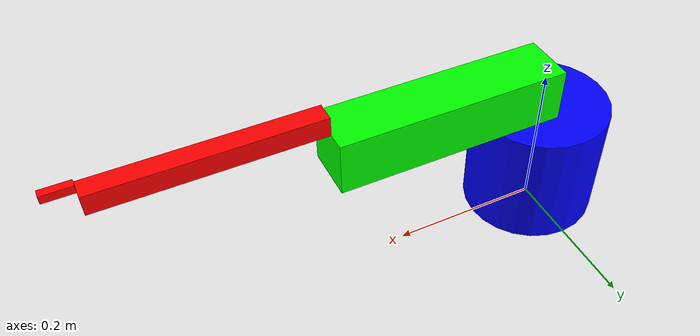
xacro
<?xml version="1.0"?>
<robot xmlns:xacro="http://www.ros.org/wiki/xacro" xmlns="http://drake.mit.edu">

    <xacro:include filename="inertial_macros.xacro"/>
    <xacro:include filename="visual_macros.xacro"/>

    <xacro:property name="shoulder_radius" value="${.18/2}" />
    <xacro:property name="shoulder_height" value=".1615" />

    <xacro:property name="upperarm_length" value=".301625" />
    <xacro:property name="upperarm_height" value="0.070471" />
    <xacro:property name="upperarm_mass" value="0.982" />

    <xacro:property name="forearm_length" value=".268224" />
    <xacro:property name="forearm_height" value=".02545" />
    <xacro:property name="forearm_mass" value="0.6" />

    <xacro:property name="handle_length" value="0.035" />
    <xacro:property name="handle_height" value="0.01" />
    <xacro:property name="handle_mass" value="0.058" />

    <link name="base_link"></link>

    <joint name="odrive_joint" type="fixed">
        <parent link="base_link"/>
        <child link="odrive_base"/>
    </joint>

    <link name="odrive_base">
        <xacro:mycylinder radius="${shoulder_radius}" height="${shoulder_height}">
            <material name="blue">
                <color rgba="0 0 1 1" />
            </material>
            <origin xyz="0 0 ${shoulder_height/2}"/>
        </xacro:mycylinder>
    </link>

    <joint name="shoulder" type="revolute">
        <parent link="odrive_base"/>
        <child link="upperarm"/>
        <origin xyz="0 0 ${shoulder_height}"/>
        <axis xyz="0 0 1" />
        <limit upper="${pi}" lower="-${pi}"/>
        <!-- drake:acceleration="8.57"  -->
        <dynamics damping="0.1"/>
    </joint>

    <link name="upperarm">
        <xacro:square_prism length="${upperarm_length}" height="${upperarm_height}" centered="false">
            <material name="green">
                <color rgba="0 1 0 1" />
            </material>
        </xacro:square_prism>
        <xacro:square_prism_inertial mass="${upperarm_mass}" length="${upperarm_length}" height="${upperarm_height}" centered="false"/>
    </link>

    <joint name="elbow" type="revolute">
        <parent link="upperarm"/>
        <child link="forearm"/>
        <origin xyz="${upperarm_length} 0 ${upperarm_height}"/>
        <axis xyz="0 0 1" />
        <limit upper="${3*pi/4}" lower="-${3*pi/4}"/>
        <dynamics damping="0.1"/>
    </joint>

    <link name="forearm">
        <xacro:square_prism length="${forearm_length}" height="${forearm_height}" centered="false">
            <material name="red">
                <color rgba="1 0 0 1" />
            </material>
        </xacro:square_prism>
        <xacro:square_prism_inertial mass="${forearm_mass}" length="${forearm_length}" height="${forearm_height}" centered="false"/>
    </link>

    <joint name="wrist_orbit" type="revolute">
        <parent link="forearm"/>
        <child link="handle"/>
        <origin xyz="${forearm_length} 0 ${forearm_height}" rpy="0 0 0"/>
        <axis xyz="0 0 1" />
        <limit upper="${pi/2}" lower="-${pi/2}"/>
        <dynamics damping="0.1"/>
    </joint>

    <link name="handle">
        <xacro:square_prism length="${handle_length}" height="${handle_height}" centered="false">
            <material name="red">
                <color rgba="1 0 0 1" />
            </material>
        </xacro:square_prism>
        <xacro:square_prism_inertial mass="${handle_mass}" length="${handle_length}" height="${handle_height}" centered="false"/>
    </link>

    <transmission type="SimpleTransmission" name="shoulder_torque">
        <actuator name="shoulder_input" />
        <joint name="shoulder" />
    </transmission>

    <transmission type="SimpleTransmission" name="elbow_torque">
        <actuator name="elbow_input" />
        <joint name="elbow" />
    </transmission>

    <transmission type="SimpleTransmission" name="wrist_spin_torque">
        <actuator name="wrist_orbit_input" />
        <joint name="wrist_orbit" />
    </transmission>

</robot>

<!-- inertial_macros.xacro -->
<robot xmlns:xacro="http://www.ros.org/wiki/xacro" >

    <xacro:include filename="helper_macros.xacro"/>

    <!-- https://en.wikipedia.org/wiki/List_of_moments_of_inertia -->
    <xacro:macro name="square_prism_inertial" params="mass length height centered">
        <inertial>
            <mass value="${mass}"/>
            <!-- In the Articulated Robot video, his xyz here is x, 0, z. Why? -->
            <xacro:square_prism_origin length="${length}" height="${height}" centered="${centered}"/>
            <inertia
                ixx="${1/12 * mass * (2 * height*height)}"
                iyy="${1/12 * mass * (length*length + height*height)}"
                izz="${1/12 * mass * (length*length + height*height)}"
                ixy="0.0"
                ixz="0.0"
                iyz="0.0"
            />
        </inertial>
    </xacro:macro>

    <xacro:macro name="sphere_inertial" params="mass radius">
        <inertial>
            <mass value="${mass}"/>
            <inertia
                ixx="${2/5 * mass * radius * radius}"
                iyy="${2/5 * mass * radius * radius}"
                izz="${2/5 * mass * radius * radius}"
                ixy="0.0"
                ixz="0.0"
                iyz="0.0"
            />
            <origin xyz="${radius} 0 0" rpy="0 0 0"/>
        </inertial>
    </xacro:macro>

</robot>

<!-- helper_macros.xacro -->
<robot xmlns:xacro="http://www.ros.org/wiki/xacro" >

    <xacro:macro name="square_prism_origin" params="length height centered">
        <xacro:if value="${centered}">
            <origin xyz="${length/2} 0 0"/>
        </xacro:if>

        <xacro:unless value="${centered}">
            <origin xyz="${length/2} 0 ${height/2}"/>
        </xacro:unless>
    </xacro:macro>

</robot>

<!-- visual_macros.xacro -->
<robot xmlns:xacro="http://www.ros.org/wiki/xacro" >

    <xacro:include filename="helper_macros.xacro"/>

    <xacro:macro name="square_prism" params="length height centered *material">
        <visual>
            <geometry>
                <box size="${length} ${height} ${height}"/>
            </geometry>
            <xacro:square_prism_origin length="${length}" height="${height}" centered="${centered}"/>
            <xacro:insert_block name="material"/>
        </visual>
    </xacro:macro>

    <xacro:macro name="mycylinder" params="radius height *material *origin">
        <visual>
            <geometry>
                <cylinder length="${height}" radius="${radius}"/>
            </geometry>
            <xacro:insert_block name="material"/>
            <xacro:insert_block name="origin"/>
        </visual>
    </xacro:macro>

    <xacro:macro name="mysphere" params="radius *material">
        <visual>
            <geometry>
                <sphere radius="${radius}"/>
            </geometry>
            <xacro:insert_block name="material"/>
            <origin xyz="${radius} 0 0" rpy="0 0 0"/>
        </visual>
    </xacro:macro>

</robot>
